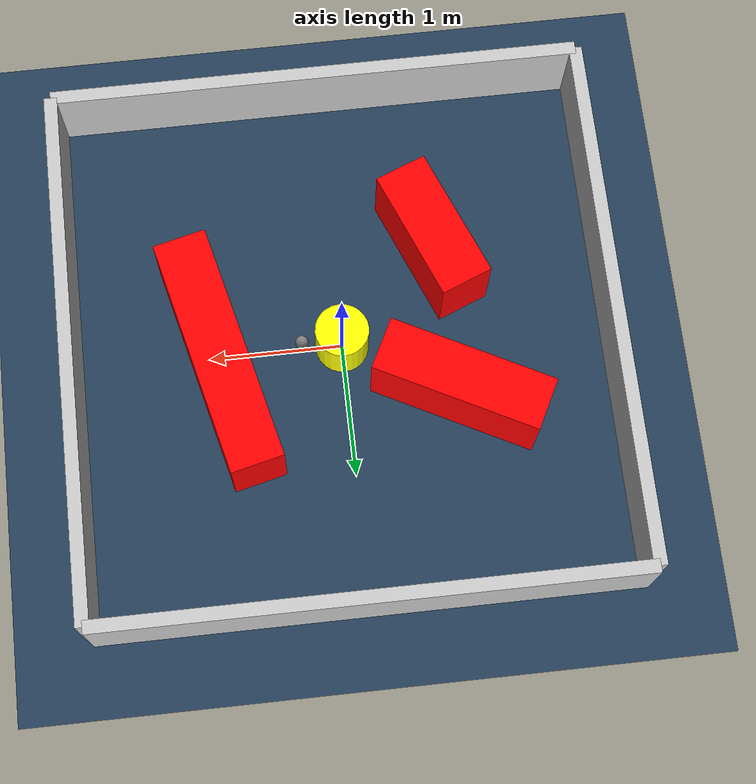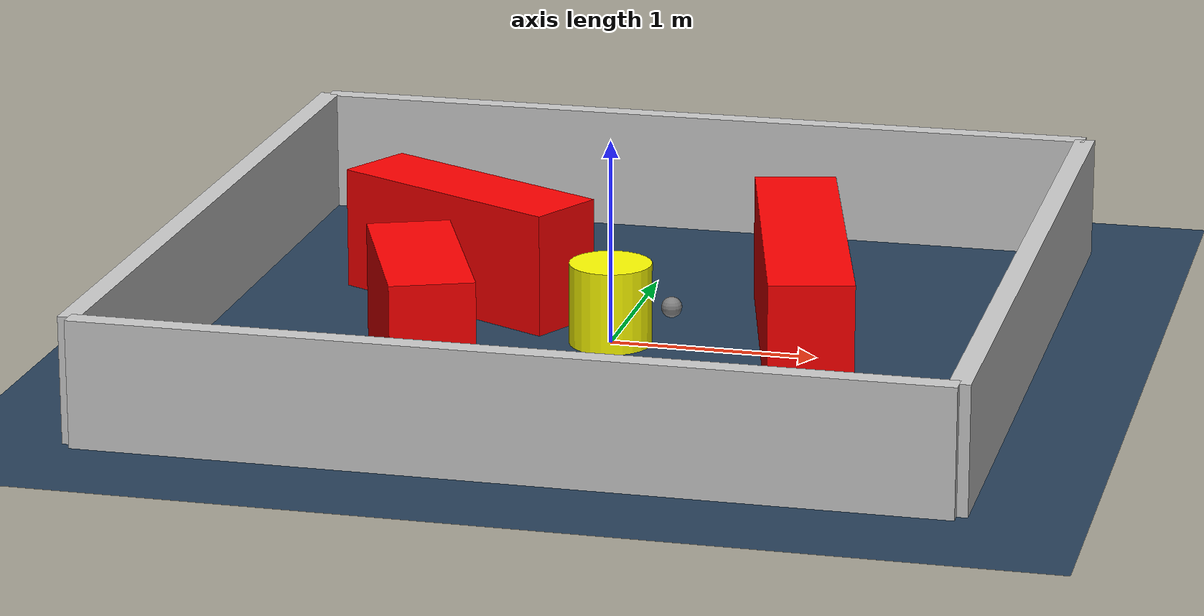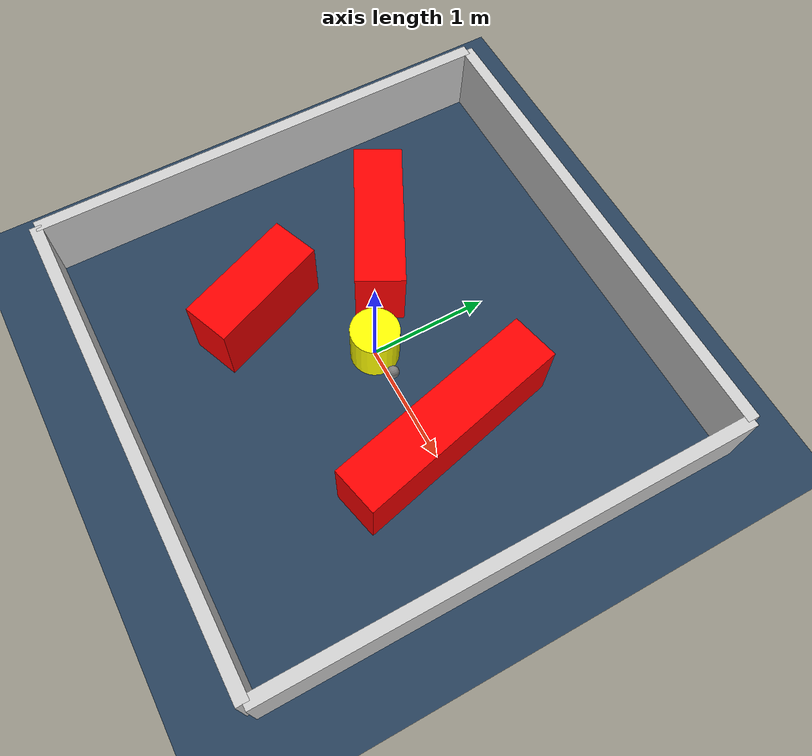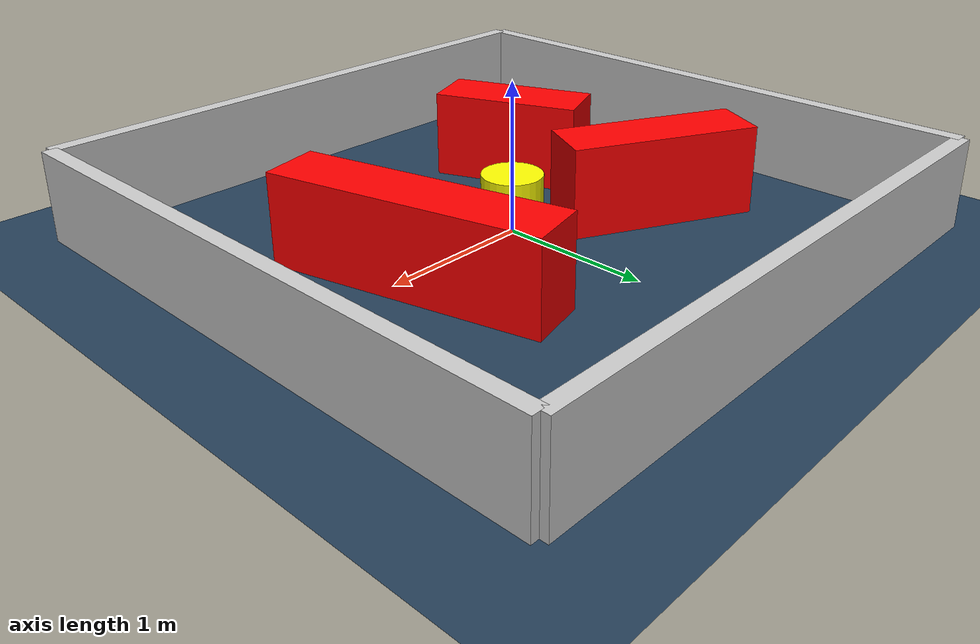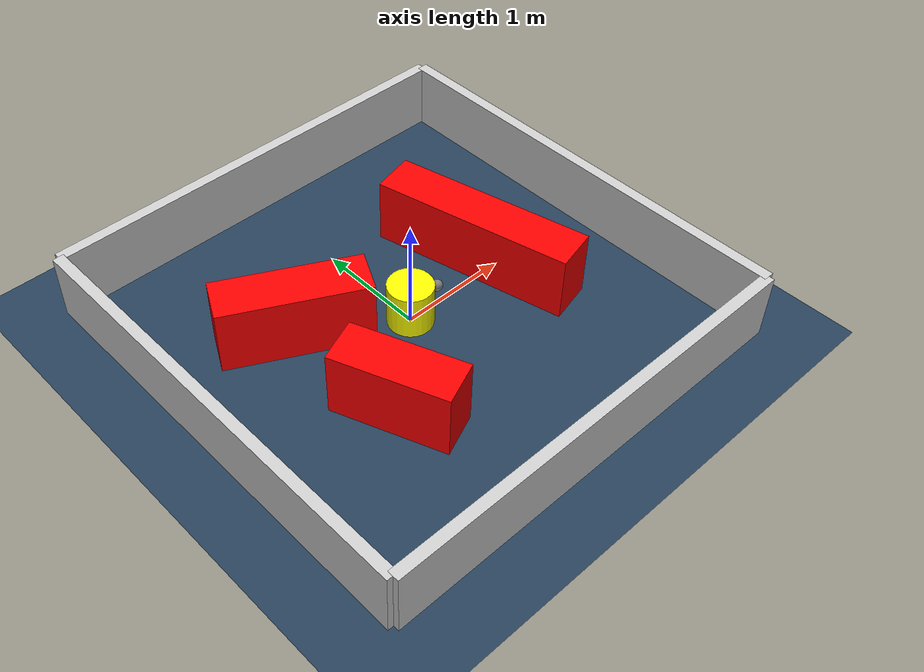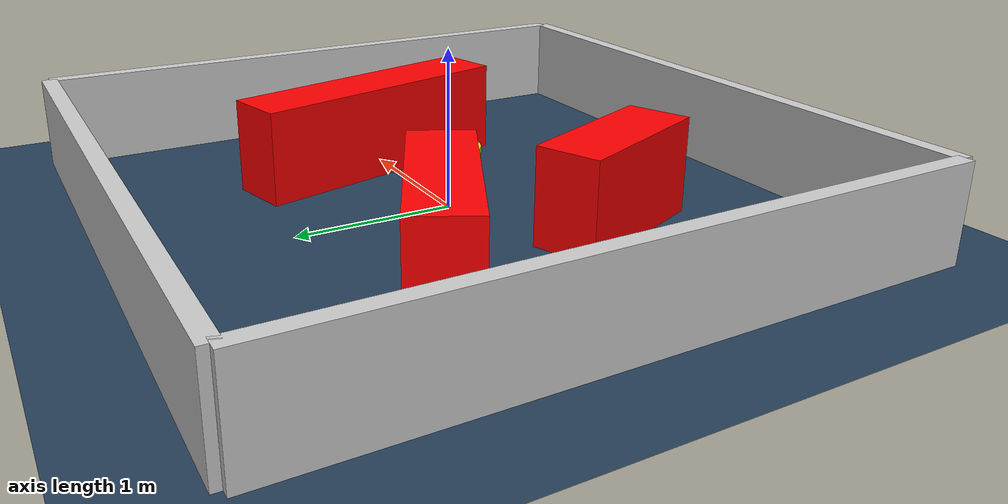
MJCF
<?xml version="1.0" ?>
<mujoco model="generated_environment">
  <option timestep="0.01" integrator="RK4" cone="elliptic"/>
  <default>
    <geom density="1"/>
  </default>
  <asset>
    <texture builtin="gradient" height="3072" rgb1="0.3 0.5 0.7" rgb2="0 0 0" type="skybox" width="512"/>
    <texture builtin="checker" height="300" mark="edge" markrgb="0.8 0.8 0.8" name="groundplane" rgb1="0.2 0.3 0.4" rgb2="0.1 0.2 0.3" type="2d" width="300"/>
    <material name="groundplane" reflectance="0.2" texrepeat="5 5" texture="groundplane" texuniform="true"/>
    <material name="robot" rgba="0.0 1.0 0.0 1"/>
  </asset>
  <worldbody>
    <light dir="0 0 -1" directional="true" pos="0 0 1.5"/>
    <geom condim="4" friction="1.0 0.005 0.001" material="groundplane" name="floor" size="0 0 0.05" type="plane"/>
    <body name="walls">
      <geom name="wall_1" condim="4" pos="-2.0 0.0 0.3" rgba="0.800000011920929 0.800000011920929 0.800000011920929 1.0" size="0.05 2.0 0.3" type="box"/>
      <geom name="wall_2" condim="4" pos="2.0 0.0 0.3" rgba="0.800000011920929 0.800000011920929 0.800000011920929 1.0" size="0.05 2.0 0.3" type="box"/>
      <geom name="wall_3" condim="4" pos="0.0 -2.0 0.3" rgba="0.800000011920929 0.800000011920929 0.800000011920929 1.0" size="2.0 0.05 0.3" type="box"/>
      <geom name="wall_4" condim="4" pos="0.0 2.0 0.3" rgba="0.800000011920929 0.800000011920929 0.800000011920929 1.0" size="2.0 0.05 0.3" type="box"/>
    </body>
    <body name="robot">
      <joint name="joint_x" type="slide" pos="0 0 0" axis="1 0 0"/>
      <joint name="joint_y" type="slide" pos="0 0 0" axis="0 1 0"/>
      <geom name="robot" type="sphere" pos="0.3 0.0 0.2" size="0.05" mass="5." friction="1.0 0.005 0.0001" condim="4" rgba="0.5 0.5 0.5 1.0"/>
      <site name="sensor_ball"/>
    </body>
    <body name="obstacle_movable_1">
      <geom name="obstacle_movable_1" condim="4" pos="0.0 0.0 0.2" euler="0 0 0.0" friction="1.0 0.005 0.001" rgba="1.0 1.0 0.0 1.0" size="0.2 0.2 0.0" type="cylinder" mass="0.1"/>
      <joint type="free"/>
    </body>
    <body name="obstacle_2_static">
      <geom name="obstacle_2_static" condim="4" pos="0.9120550234432234 0.10953258120882992 0.3" euler="0 0 103.52277813015816" friction="1.0 0.005 0.001" rgba="1 0 0 1" size="0.9026796747855204 0.2 0.3" type="box"/>
    </body>
    <body name="obstacle_3_static">
      <geom name="obstacle_3_static" condim="4" pos="-0.8309737035455591 0.48142630141167975 0.3" euler="0 0 332.74773101099976" friction="1.0 0.005 0.001" rgba="1 0 0 1" size="0.6378461096333861 0.2 0.3" type="box"/>
    </body>
    <body name="obstacle_4_static">
      <geom name="obstacle_4_static" condim="4" pos="-0.7497756361608308 -0.6823549293413487 0.3" euler="0 0 112.074886800758" friction="1.0 0.005 0.001" rgba="1 0 0 1" size="0.5093135945069274 0.2 0.3" type="box"/>
    </body>
  </worldbody>
  <actuator>
    <motor name="actuator_x" joint="joint_x" gear="1" ctrlrange="-1 1"/>
    <motor name="actuator_y" joint="joint_y" gear="1" ctrlrange="-1 1"/>
  </actuator>
</mujoco>
